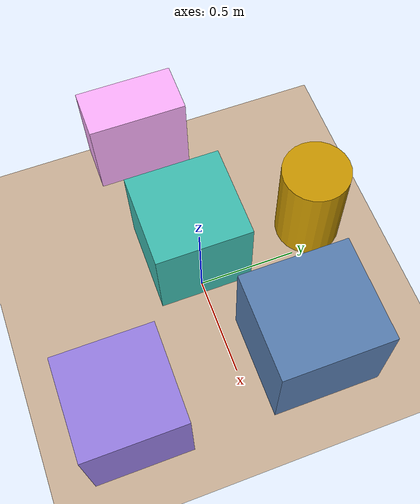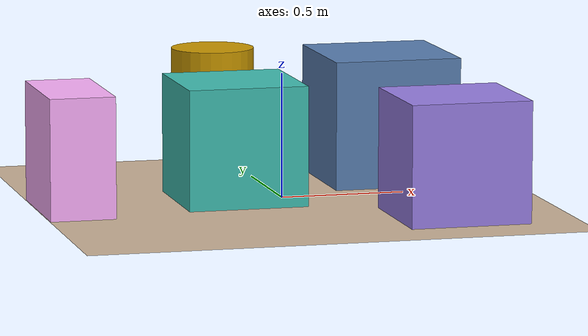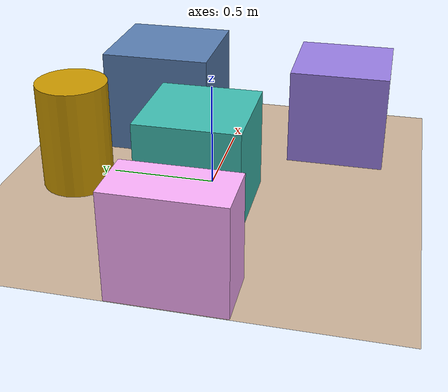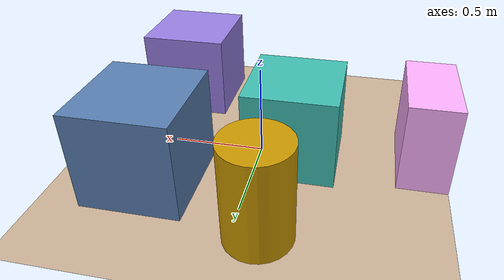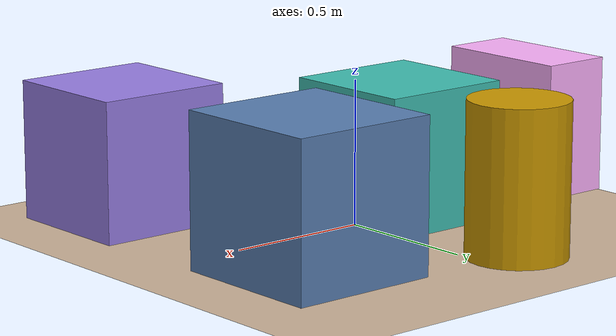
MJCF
<mujoco>
   <asset>
<texture type="skybox" builtin="gradient" rgb1="0.1 0.4 0.7" rgb2="0.0 0.7 0.2" width="256" height="256"/>
<texture name="gradient_0" builtin="gradient" rgb1="0.3 0.1 0.4" rgb2="0.4 0.9 1.0" width="200" height="200"/>
<texture name="flat_1" builtin="flat" rgb1="1.0 0.7 1.0" rgb2="1.0 0.7 1.0"  width="200" height="200"/>
<texture name="gradient_2" builtin="gradient" rgb1="0.4 0.8 0.8" rgb2="0.1 0.7 0.6" width="200" height="200"/>
<texture name="flat_3" builtin="flat" rgb1="0.8 0.6 0.0" rgb2="0.8 0.6 0.0"  width="200" height="200"/>
<texture name="flat_4" builtin="flat" rgb1="0.6 0.5 0.9" rgb2="0.6 0.5 0.9"  width="200" height="200"/><material name="gradient_0_mat" reflectance="0" texture="gradient_0" texuniform="true"/>
<material name="flat_1_mat" reflectance="0" texture="flat_1" texuniform="true"/>
<material name="gradient_2_mat" reflectance="0" texture="gradient_2" texuniform="true"/>
<material name="flat_3_mat" reflectance="0" texture="flat_3" texuniform="true"/>
<material name="flat_4_mat" reflectance="0" texture="flat_4" texuniform="true"/>
   </asset>

   <worldbody>
      <light diffuse=".9 .9 .9" pos="0 0 3" dir="0 0 -1"/>
     <geom type="plane" size="1 1 0.1" rgba="0.8 0.7 0.6 1"/>
<geom type="box" pos="0.51 0.36 0.26" size="0.26 0.27 0.26" material="gradient_0_mat" />
<geom type="box" pos="-0.87 -0.06 0.24" size="0.13 0.25 0.24" material="flat_1_mat" />
<geom type="box" pos="-0.19 0.01 0.24" size="0.24 0.24 0.24" material="gradient_2_mat" />
<geom type="cylinder" pos="-0.13 0.64 0.26" size="0.17 0.26 0.26" material="flat_3_mat" />
<geom type="box" pos="0.55 -0.56 0.24" size="0.24 0.24 0.24" material="flat_4_mat" /><camera euler="60 0 180" fovy="60" name="camera_a" pos="0 -1.5 1"></camera>   </worldbody>
</mujoco>
